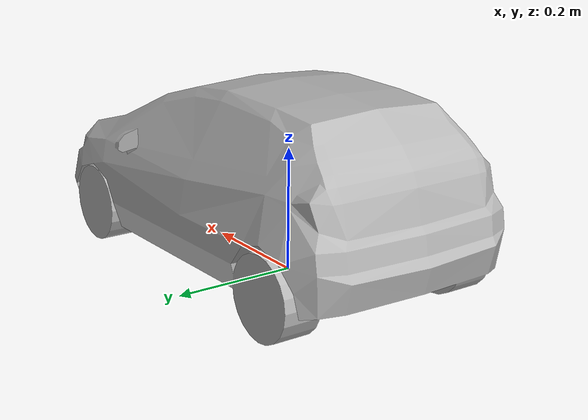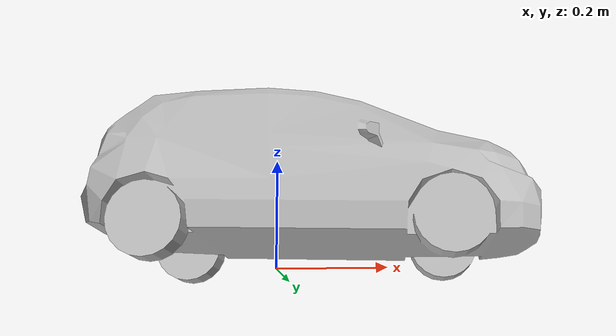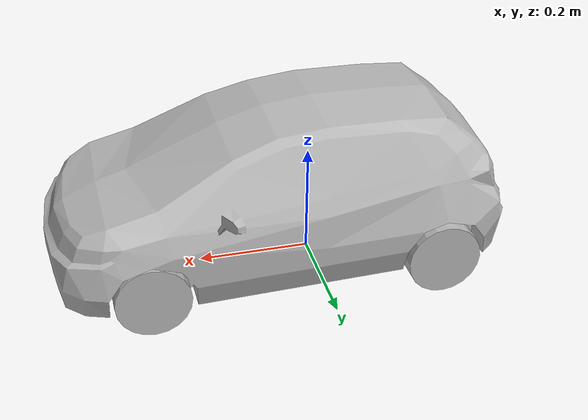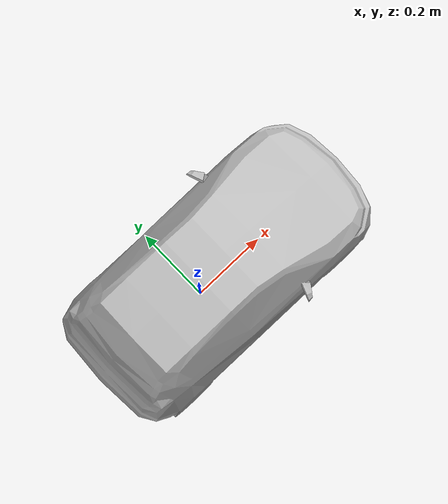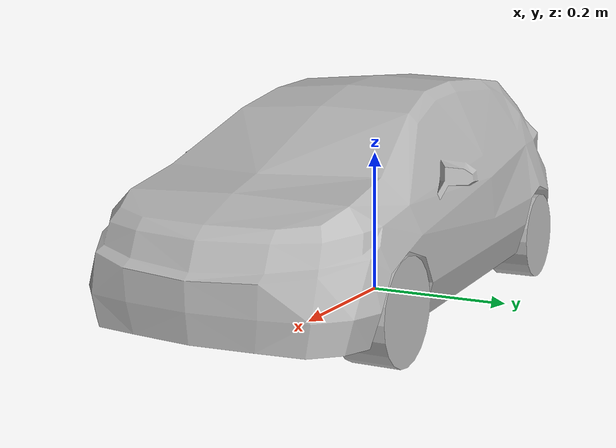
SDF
<?xml version="1.0" ?>
<sdf version="1.6">
  <model name="hatchback_red">
    <static>true</static>
    <link name="link">
      <collision name="collision">
        <pose>0 0 0 0 0 1.57079632679</pose>
        <geometry>
          <mesh>
            <scale>0.00508 0.00508 0.00508</scale>
            <uri>meshes/hatchback.obj</uri>
          </mesh>
        </geometry>
      </collision>
      <visual name="visual">
        <pose>0 0 0 0 0 1.57079632679</pose>
        <geometry>
          <mesh>
            <scale>0.00508 0.00508 0.00508</scale>
            <uri>meshes/hatchback.obj</uri>
          </mesh>
        </geometry>
      </visual>
    </link>
  </model>
</sdf>
